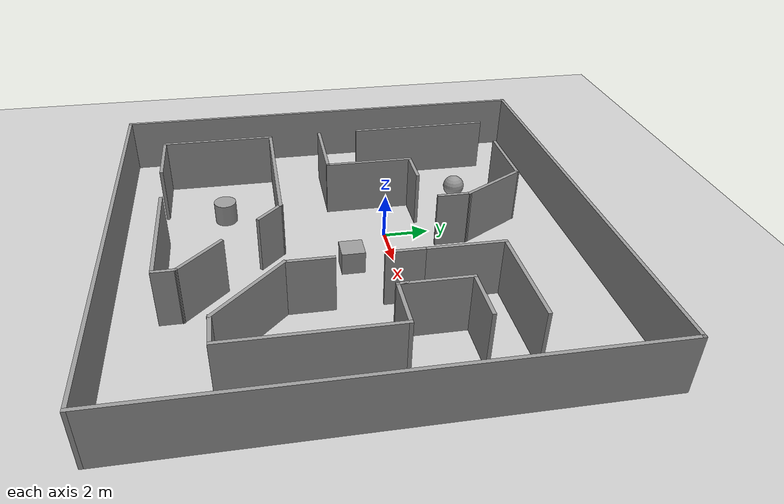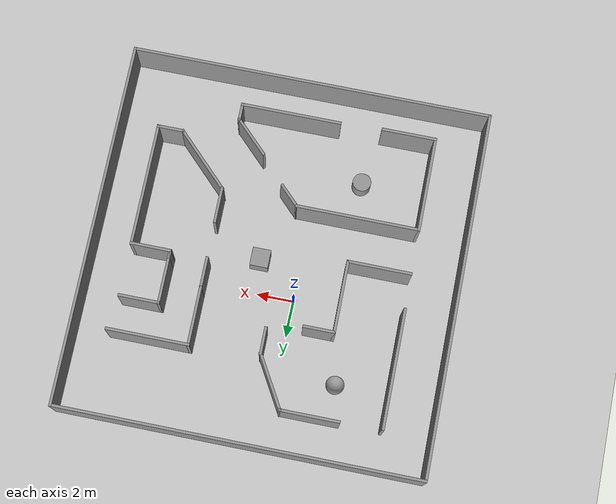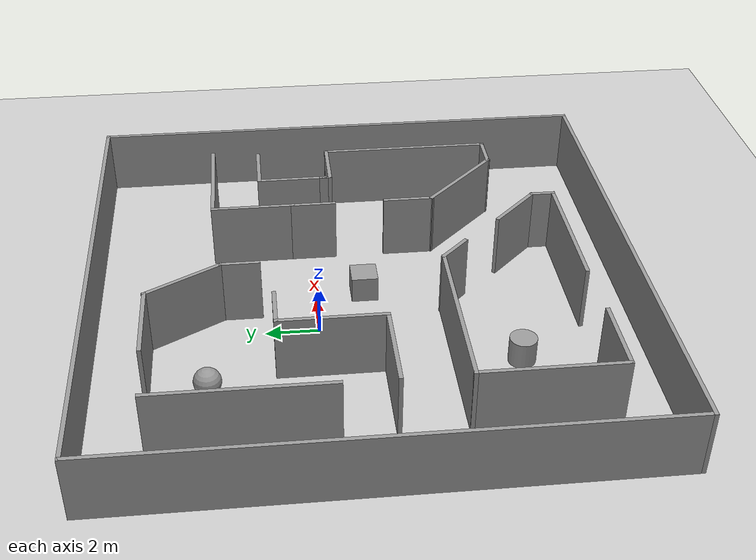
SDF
<sdf version="1.6">
 <world name="default">
  <light name="sun" type="directional">
   <pose>0 0 10 0 -0 0</pose>
   <diffuse>0.8 0.8 0.8 1</diffuse>
   <specular>0.2 0.2 0.2 1</specular>
   <attenuation>
    <range>1000</range>
    <constant>0.9</constant>
    <linear>0.01</linear>
    <quadratic>0.001</quadratic>
   </attenuation>
   <direction>-0.5 0.1 -0.9</direction>
  </light>
  <model name="ground_plane">
   <static>1</static>
   <link name="link">
    <collision name="collision">
     <geometry><plane><normal>0 0 1</normal><size>100 100</size></plane></geometry>
     <surface>
      <contact><collide_bitmask>65535</collide_bitmask></contact>
      <friction><ode><mu>100</mu><mu2>50</mu2></ode></friction>
     </surface>
    </collision>
    <visual name="visual">
     <cast_shadows>0</cast_shadows>
     <geometry><plane><normal>0 0 1</normal><size>100 100</size></plane></geometry>
     <material>
      <script><uri>file://media/materials/scripts/gazebo.material</uri><name>Gazebo/Grey</name></script>
     </material>
    </visual>
   </link>
  </model>
  <gravity>0 0 -9.8</gravity>
  <magnetic_field>6e-06 2.3e-05 -4.2e-05</magnetic_field>
  <atmosphere type="adiabatic"/>
  <physics name="default_physics" default="0" type="ode">
   <max_step_size>0.001</max_step_size>
   <real_time_factor>1</real_time_factor>
   <real_time_update_rate>1000</real_time_update_rate>
  </physics>
  <scene><ambient>0.4 0.4 0.4 1</ambient><background>0.7 0.7 0.7 1</background><shadows>1</shadows></scene>
  <audio><device>default</device></audio>
  <spherical_coordinates>
   <surface_model>EARTH_WGS84</surface_model>
   <latitude_deg>0</latitude_deg>
   <longitude_deg>0</longitude_deg>
   <elevation>0</elevation>
   <heading_deg>0</heading_deg>
  </spherical_coordinates>
  <model name="smaller_floorplan">
   <pose>1.32311 -1.68686 0 0 -0 0</pose>
   <link name="Wall_12">
    <collision name="Wall_12_Collision">
     <geometry><box><size>3.25 0.15 2.5</size></box></geometry>
     <pose>0 0 1.25 0 -0 0</pose>
    </collision>
    <visual name="Wall_12_Visual">
     <pose>0 0 1.25 0 -0 0</pose>
     <geometry><box><size>3.25 0.15 2.5</size></box></geometry>
     <material>
      <script><uri>file://media/materials/scripts/gazebo.material</uri><name>Gazebo/Grey</name></script>
      <ambient>1 1 1 1</ambient>
     </material>
     <meta><layer>0</layer></meta>
    </visual>
    <pose>-3.35944 7.84693 0 0 -0 0</pose>
   </link>
   <link name="Wall_13">
    <collision name="Wall_13_Collision">
     <geometry><box><size>3.25 0.15 2.5</size></box></geometry>
     <pose>0 0 1.25 0 -0 0</pose>
    </collision>
    <visual name="Wall_13_Visual">
     <pose>0 0 1.25 0 -0 0</pose>
     <geometry><box><size>3.25 0.15 2.5</size></box></geometry>
     <material>
      <script><uri>file://media/materials/scripts/gazebo.material</uri><name>Gazebo/Grey</name></script>
      <ambient>1 1 1 1</ambient>
     </material>
     <meta><layer>0</layer></meta>
    </visual>
    <pose>-1.03444 6.50459 0 0 -0 -1.0472</pose>
   </link>
   <link name="Wall_14">
    <collision name="Wall_14_Collision">
     <geometry><box><size>1.5 0.15 2.5</size></box></geometry>
     <pose>0 0 1.25 0 -0 0</pose>
    </collision>
    <visual name="Wall_14_Visual">
     <pose>0 0 1.25 0 -0 0</pose>
     <geometry><box><size>1.5 0.15 2.5</size></box></geometry>
     <material>
      <script><uri>file://media/materials/scripts/gazebo.material</uri><name>Gazebo/Grey</name></script>
      <ambient>1 1 1 1</ambient>
     </material>
     <meta><layer>0</layer></meta>
    </visual>
    <pose>-0.259442 4.48725 0 0 -0 -1.5708</pose>
   </link>
   <link name="Wall_19">
    <collision name="Wall_19_Collision">
     <geometry><box><size>6.5 0.15 2.5</size></box></geometry>
     <pose>0 0 1.25 0 -0 0</pose>
    </collision>
    <visual name="Wall_19_Visual">
     <pose>0 0 1.25 0 -0 0</pose>
     <geometry><box><size>6.5 0.15 2.5</size></box></geometry>
     <material>
      <script><uri>file://media/materials/scripts/gazebo.material</uri><name>Gazebo/Grey</name></script>
      <ambient>1 1 1 1</ambient>
     </material>
     <meta><layer>0</layer></meta>
    </visual>
    <pose>-7.19375 4.57675 0 0 -0 -1.5708</pose>
   </link>
   <link name="Wall_21">
    <collision name="Wall_21_Collision">
     <geometry><box><size>6.75 0.15 2.5</size></box></geometry>
     <pose>0 0 1.25 0 -0 0</pose>
    </collision>
    <visual name="Wall_21_Visual">
     <pose>0 0 1.25 0 -0 0</pose>
     <geometry><box><size>6.75 0.15 2.5</size></box></geometry>
     <material>
      <script><uri>file://media/materials/scripts/gazebo.material</uri><name>Gazebo/Grey</name></script>
      <ambient>1 1 1 1</ambient>
     </material>
     <meta><layer>0</layer></meta>
    </visual>
    <pose>-3.84616 -2.95593 0 0 -0 0</pose>
   </link>
   <link name="Wall_22">
    <collision name="Wall_22_Collision">
     <geometry><box><size>1.5 0.15 2.5</size></box></geometry>
     <pose>0 0 1.25 0 -0 0</pose>
    </collision>
    <visual name="Wall_22_Visual">
     <pose>0 0 1.25 0 -0 0</pose>
     <geometry><box><size>1.5 0.15 2.5</size></box></geometry>
     <material>
      <script><uri>file://media/materials/scripts/gazebo.material</uri><name>Gazebo/Grey</name></script>
      <ambient>1 1 1 1</ambient>
     </material>
     <meta><layer>0</layer></meta>
    </visual>
    <pose>-0.068861 -3.43323 0 0 -0 -0.785398</pose>
   </link>
   <link name="Wall_24">
    <collision name="Wall_24_Collision">
     <geometry><box><size>2.5 0.15 2.5</size></box></geometry>
     <pose>0 0 1.25 0 -0 0</pose>
    </collision>
    <visual name="Wall_24_Visual">
     <pose>0 0 1.25 0 -0 0</pose>
     <geometry><box><size>2.5 0.15 2.5</size></box></geometry>
     <material>
      <script><uri>file://media/materials/scripts/gazebo.material</uri><name>Gazebo/Grey</name></script>
      <ambient>1 1 1 1</ambient>
     </material>
     <meta><layer>0</layer></meta>
    </visual>
    <pose>2.58397 -6.26145 0 0 -0 -0.785398</pose>
   </link>
   <link name="Wall_25">
    <collision name="Wall_25_Collision">
     <geometry><box><size>1 0.15 2.5</size></box></geometry>
     <pose>0 0 1.25 0 -0 0</pose>
    </collision>
    <visual name="Wall_25_Visual">
     <pose>0 0 1.25 0 -0 0</pose>
     <geometry><box><size>1 0.15 2.5</size></box></geometry>
     <material>
      <script><uri>file://media/materials/scripts/gazebo.material</uri><name>Gazebo/Grey</name></script>
      <ambient>1 1 1 1</ambient>
     </material>
     <meta><layer>0</layer></meta>
    </visual>
    <pose>3.41482 -7.5173 0 0 -0 -1.5708</pose>
   </link>
   <link name="Wall_26">
    <collision name="Wall_26_Collision">
     <geometry><box><size>5.5 0.15 2.5</size></box></geometry>
     <pose>0 0 1.25 0 -0 0</pose>
    </collision>
    <visual name="Wall_26_Visual">
     <pose>0 0 1.25 0 -0 0</pose>
     <geometry><box><size>5.5 0.15 2.5</size></box></geometry>
     <material>
      <script><uri>file://media/materials/scripts/gazebo.material</uri><name>Gazebo/Grey</name></script>
      <ambient>1 1 1 1</ambient>
     </material>
     <meta><layer>0</layer></meta>
    </visual>
    <pose>0.739818 -7.9423 0 0 -0 3.14159</pose>
   </link>
   <link name="Wall_3">
    <collision name="Wall_3_Collision">
     <geometry><box><size>20 0.15 2.5</size></box></geometry>
     <pose>0 0 1.25 0 -0 0</pose>
    </collision>
    <visual name="Wall_3_Visual">
     <pose>0 0 1.25 0 -0 0</pose>
     <geometry><box><size>20 0.15 2.5</size></box></geometry>
     <material>
      <script><uri>file://media/materials/scripts/gazebo.material</uri><name>Gazebo/Grey</name></script>
      <ambient>1 1 1 1</ambient>
     </material>
     <meta><layer>0</layer></meta>
    </visual>
    <pose>-9.8 0 0 0 -0 1.5708</pose>
   </link>
   <link name="Wall_30">
    <collision name="Wall_30_Collision">
     <geometry><box><size>5.25 0.15 2.5</size></box></geometry>
     <pose>0 0 1.25 0 -0 0</pose>
    </collision>
    <visual name="Wall_30_Visual">
     <pose>0 0 1.25 0 -0 0</pose>
     <geometry><box><size>5.25 0.15 2.5</size></box></geometry>
     <material>
      <script><uri>file://media/materials/scripts/gazebo.material</uri><name>Gazebo/Grey</name></script>
      <ambient>1 1 1 1</ambient>
     </material>
     <meta><layer>0</layer></meta>
    </visual>
    <pose>-7.14616 -5.50593 0 0 -0 -1.5708</pose>
   </link>
   <link name="Wall_31">
    <collision name="Wall_31_Collision">
     <geometry><box><size>3 0.15 2.5</size></box></geometry>
     <pose>0 0 1.25 0 -0 0</pose>
    </collision>
    <visual name="Wall_31_Visual">
     <pose>0 0 1.25 0 -0 0</pose>
     <geometry><box><size>3 0.15 2.5</size></box></geometry>
     <material>
      <script><uri>file://media/materials/scripts/gazebo.material</uri><name>Gazebo/Grey</name></script>
      <ambient>1 1 1 1</ambient>
     </material>
     <meta><layer>0</layer></meta>
    </visual>
    <pose>-5.72116 -8.05593 0 0 -0 0</pose>
   </link>
   <link name="Wall_33">
    <collision name="Wall_33_Collision">
     <geometry><box><size>3.5 0.15 2.5</size></box></geometry>
     <pose>0 0 1.25 0 -0 0</pose>
    </collision>
    <visual name="Wall_33_Visual">
     <pose>0 0 1.25 0 -0 0</pose>
     <geometry><box><size>3.5 0.15 2.5</size></box></geometry>
     <material>
      <script><uri>file://media/materials/scripts/gazebo.material</uri><name>Gazebo/Grey</name></script>
      <ambient>1 1 1 1</ambient>
     </material>
     <meta><layer>0</layer></meta>
    </visual>
    <pose>-5.47116 -0.528858 0 0 -0 0</pose>
   </link>
   <link name="Wall_34">
    <collision name="Wall_34_Collision">
     <geometry><box><size>4 0.15 2.5</size></box></geometry>
     <pose>0 0 1.25 0 -0 0</pose>
    </collision>
    <visual name="Wall_34_Visual">
     <pose>0 0 1.25 0 -0 0</pose>
     <geometry><box><size>4 0.15 2.5</size></box></geometry>
     <material>
      <script><uri>file://media/materials/scripts/gazebo.material</uri><name>Gazebo/Grey</name></script>
      <ambient>1 1 1 1</ambient>
     </material>
     <meta><layer>0</layer></meta>
    </visual>
    <pose>-3.79616 1.39614 0 0 -0 1.5708</pose>
   </link>
   <link name="Wall_35">
    <collision name="Wall_35_Collision">
     <geometry><box><size>1.75 0.15 2.5</size></box></geometry>
     <pose>0 0 1.25 0 -0 0</pose>
    </collision>
    <visual name="Wall_35_Visual">
     <pose>0 0 1.25 0 -0 0</pose>
     <geometry><box><size>1.75 0.15 2.5</size></box></geometry>
     <material>
      <script><uri>file://media/materials/scripts/gazebo.material</uri><name>Gazebo/Grey</name></script>
      <ambient>1 1 1 1</ambient>
     </material>
     <meta><layer>0</layer></meta>
    </visual>
    <pose>-2.99616 3.32114 0 0 -0 0</pose>
   </link>
   <link name="Wall_39">
    <collision name="Wall_39_Collision">
     <geometry><box><size>1.75 0.15 2.5</size></box></geometry>
     <pose>0 0 1.25 0 -0 0</pose>
    </collision>
    <visual name="Wall_39_Visual">
     <pose>0 0 1.25 0 -0 0</pose>
     <geometry><box><size>1.75 0.15 2.5</size></box></geometry>
     <material>
      <script><uri>file://media/materials/scripts/gazebo.material</uri><name>Gazebo/Grey</name></script>
      <ambient>1 1 1 1</ambient>
     </material>
     <meta><layer>0</layer></meta>
    </visual>
    <pose>3.51572 1.56475 0 0 -0 -1.5708</pose>
   </link>
   <link name="Wall_41">
    <collision name="Wall_41_Collision">
     <geometry><box><size>2 0.15 2.5</size></box></geometry>
     <pose>0 0 1.25 0 -0 0</pose>
    </collision>
    <visual name="Wall_41_Visual">
     <pose>0 0 1.25 0 -0 0</pose>
     <geometry><box><size>2 0.15 2.5</size></box></geometry>
     <material>
      <script><uri>file://media/materials/scripts/gazebo.material</uri><name>Gazebo/Grey</name></script>
      <ambient>1 1 1 1</ambient>
     </material>
     <meta><layer>0</layer></meta>
    </visual>
    <pose>3.52997 -2.19847 0 0 -0 -1.5708</pose>
   </link>
   <link name="Wall_42">
    <collision name="Wall_42_Collision">
     <geometry><box><size>4 0.15 2.5</size></box></geometry>
     <pose>0 0 1.25 0 -0 0</pose>
    </collision>
    <visual name="Wall_42_Visual">
     <pose>0 0 1.25 0 -0 0</pose>
     <geometry><box><size>4 0.15 2.5</size></box></geometry>
     <material>
      <script><uri>file://media/materials/scripts/gazebo.material</uri><name>Gazebo/Grey</name></script>
      <ambient>1 1 1 1</ambient>
     </material>
     <meta><layer>0</layer></meta>
    </visual>
    <pose>4.89116 -4.48465 0 0 -0 -0.785398</pose>
   </link>
   <link name="Wall_43">
    <collision name="Wall_43_Collision">
     <geometry><box><size>1.5 0.15 2.5</size></box></geometry>
     <pose>0 0 1.25 0 -0 0</pose>
    </collision>
    <visual name="Wall_43_Visual">
     <pose>0 0 1.25 0 -0 0</pose>
     <geometry><box><size>1.5 0.15 2.5</size></box></geometry>
     <material>
      <script><uri>file://media/materials/scripts/gazebo.material</uri><name>Gazebo/Grey</name></script>
      <ambient>1 1 1 1</ambient>
     </material>
     <meta><layer>0</layer></meta>
    </visual>
    <pose>6.92734 -5.84583 0 0 -0 0</pose>
   </link>
   <link name="Wall_44">
    <collision name="Wall_44_Collision">
     <geometry><box><size>6.75 0.15 2.5</size></box></geometry>
     <pose>0 0 1.25 0 -0 0</pose>
    </collision>
    <visual name="Wall_44_Visual">
     <pose>0 0 1.25 0 -0 0</pose>
     <geometry><box><size>6.75 0.15 2.5</size></box></geometry>
     <material>
      <script><uri>file://media/materials/scripts/gazebo.material</uri><name>Gazebo/Grey</name></script>
      <ambient>1 1 1 1</ambient>
     </material>
     <meta><layer>0</layer></meta>
    </visual>
    <pose>7.60234 -2.54583 0 0 -0 1.5708</pose>
   </link>
   <link name="Wall_45">
    <collision name="Wall_45_Collision">
     <geometry><box><size>2.25 0.15 2.5</size></box></geometry>
     <pose>0 0 1.25 0 -0 0</pose>
    </collision>
    <visual name="Wall_45_Visual">
     <pose>0 0 1.25 0 -0 0</pose>
     <geometry><box><size>2.25 0.15 2.5</size></box></geometry>
     <material>
      <script><uri>file://media/materials/scripts/gazebo.material</uri><name>Gazebo/Grey</name></script>
      <ambient>1 1 1 1</ambient>
     </material>
     <meta><layer>0</layer></meta>
    </visual>
    <pose>6.55234 0.754168 0 0 -0 3.14159</pose>
   </link>
   <link name="Wall_46">
    <collision name="Wall_46_Collision">
     <geometry><box><size>0.5 0.15 2.5</size></box></geometry>
     <pose>0 0 1.25 0 -0 0</pose>
    </collision>
    <visual name="Wall_46_Visual">
     <pose>0 0 1.25 0 -0 0</pose>
     <geometry><box><size>0.5 0.15 2.5</size></box></geometry>
     <material>
      <script><uri>file://media/materials/scripts/gazebo.material</uri><name>Gazebo/Grey</name></script>
      <ambient>1 1 1 1</ambient>
     </material>
     <meta><layer>0</layer></meta>
    </visual>
    <pose>5.50234 0.929168 0 0 -0 1.5708</pose>
   </link>
   <link name="Wall_48">
    <collision name="Wall_48_Collision">
     <geometry><box><size>3.25 0.15 2.5</size></box></geometry>
     <pose>0 0 1.25 0 -0 0</pose>
    </collision>
    <visual name="Wall_48_Visual">
     <pose>0 0 1.25 0 -0 0</pose>
     <geometry><box><size>3.25 0.15 2.5</size></box></geometry>
     <material>
      <script><uri>file://media/materials/scripts/gazebo.material</uri><name>Gazebo/Grey</name></script>
      <ambient>1 1 1 1</ambient>
     </material>
     <meta><layer>0</layer></meta>
    </visual>
    <pose>3.51572 3.91475 0 0 -0 1.5708</pose>
   </link>
   <link name="Wall_49">
    <collision name="Wall_49_Collision">
     <geometry><box><size>4.5 0.15 2.5</size></box></geometry>
     <pose>0 0 1.25 0 -0 0</pose>
    </collision>
    <visual name="Wall_49_Visual">
     <pose>0 0 1.25 0 -0 0</pose>
     <geometry><box><size>4.5 0.15 2.5</size></box></geometry>
     <material>
      <script><uri>file://media/materials/scripts/gazebo.material</uri><name>Gazebo/Grey</name></script>
      <ambient>1 1 1 1</ambient>
     </material>
     <meta><layer>0</layer></meta>
    </visual>
    <pose>5.69072 5.46475 0 0 -0 0</pose>
   </link>
   <link name="Wall_5">
    <collision name="Wall_5_Collision">
     <geometry><box><size>19.75 0.15 2.5</size></box></geometry>
     <pose>0 0 1.25 0 -0 0</pose>
    </collision>
    <visual name="Wall_5_Visual">
     <pose>0 0 1.25 0 -0 0</pose>
     <geometry><box><size>19.75 0.15 2.5</size></box></geometry>
     <material>
      <script><uri>file://media/materials/scripts/gazebo.material</uri><name>Gazebo/Grey</name></script>
      <ambient>1 1 1 1</ambient>
     </material>
     <meta><layer>0</layer></meta>
    </visual>
    <pose>0 9.925 0 0 -0 0</pose>
   </link>
   <link name="Wall_51">
    <collision name="Wall_51_Collision">
     <geometry><box><size>3 0.15 2.5</size></box></geometry>
     <pose>0 0 1.25 0 -0 0</pose>
    </collision>
    <visual name="Wall_51_Visual">
     <pose>0 0 1.25 0 -0 0</pose>
     <geometry><box><size>3 0.15 2.5</size></box></geometry>
     <material>
      <script><uri>file://media/materials/scripts/gazebo.material</uri><name>Gazebo/Grey</name></script>
      <ambient>1 1 1 1</ambient>
     </material>
     <meta><layer>0</layer></meta>
    </visual>
    <pose>5.50234 2.17917 0 0 -0 1.5708</pose>
   </link>
   <link name="Wall_52">
    <collision name="Wall_52_Collision">
     <geometry><box><size>2.25 0.15 2.5</size></box></geometry>
     <pose>0 0 1.25 0 -0 0</pose>
    </collision>
    <visual name="Wall_52_Visual">
     <pose>0 0 1.25 0 -0 0</pose>
     <geometry><box><size>2.25 0.15 2.5</size></box></geometry>
     <material>
      <script><uri>file://media/materials/scripts/gazebo.material</uri><name>Gazebo/Grey</name></script>
      <ambient>1 1 1 1</ambient>
     </material>
     <meta><layer>0</layer></meta>
    </visual>
    <pose>6.55234 3.60417 0 0 -0 0</pose>
   </link>
   <link name="Wall_6">
    <collision name="Wall_6_Collision">
     <geometry><box><size>20 0.15 2.5</size></box></geometry>
     <pose>0 0 1.25 0 -0 0</pose>
    </collision>
    <visual name="Wall_6_Visual">
     <pose>0 0 1.25 0 -0 0</pose>
     <geometry><box><size>20 0.15 2.5</size></box></geometry>
     <material>
      <script><uri>file://media/materials/scripts/gazebo.material</uri><name>Gazebo/Grey</name></script>
      <ambient>1 1 1 1</ambient>
     </material>
     <meta><layer>0</layer></meta>
    </visual>
    <pose>9.8 0 0 0 -0 -1.5708</pose>
   </link>
   <link name="Wall_7">
    <collision name="Wall_7_Collision">
     <geometry><box><size>19.75 0.15 2.5</size></box></geometry>
     <pose>0 0 1.25 0 -0 0</pose>
    </collision>
    <visual name="Wall_7_Visual">
     <pose>0 0 1.25 0 -0 0</pose>
     <geometry><box><size>19.75 0.15 2.5</size></box></geometry>
     <material>
      <script><uri>file://media/materials/scripts/gazebo.material</uri><name>Gazebo/Grey</name></script>
      <ambient>1 1 1 1</ambient>
     </material>
     <meta><layer>0</layer></meta>
    </visual>
    <pose>0 -9.925 0 0 -0 3.14159</pose>
   </link>
   <static>1</static>
  </model>
  <model name="smaller_updated">
   <link name="link_1">
    <inertial>
     <mass>1</mass>
     <inertia><ixx>0.145833</ixx><ixy>0</ixy><ixz>0</ixz><iyy>0.145833</iyy><iyz>0</iyz><izz>0.125</izz></inertia>
    </inertial>
    <pose>-1.30334 -5.4435 0 0 -0 0</pose>
    <visual name="visual">
     <geometry><cylinder><radius>0.5</radius><length>1</length></cylinder></geometry>
     <material>
      <lighting>1</lighting>
      <script><uri>file://media/materials/scripts/gazebo.material</uri><name>Gazebo/Grey</name></script>
     </material>
    </visual>
    <collision name="collision">
     <geometry><cylinder><radius>0.5</radius><length>1</length></cylinder></geometry>
     <surface>
      <friction>
       <ode><mu>1</mu><mu2>1</mu2><fdir1>0 0 0</fdir1><slip1>0</slip1><slip2>0</slip2></ode>
       <torsional>
        <coefficient>1</coefficient>
        <patch_radius>0</patch_radius>
        <surface_radius>0</surface_radius>
        <use_patch_radius>1</use_patch_radius>
        <ode><slip>0</slip></ode>
       </torsional>
      </friction>
      <bounce><restitution_coefficient>0</restitution_coefficient><threshold>1e+06</threshold></bounce>
      <contact>
       <collide_without_contact>0</collide_without_contact>
       <collide_without_contact_bitmask>1</collide_without_contact_bitmask>
       <collide_bitmask>1</collide_bitmask>
       <ode>
        <soft_cfm>0</soft_cfm>
        <soft_erp>0.2</soft_erp>
        <kp>1e+13</kp>
        <kd>1</kd>
        <max_vel>0.01</max_vel>
        <min_depth>0</min_depth>
       </ode>
       <bullet>
        <split_impulse>1</split_impulse>
        <split_impulse_penetration_threshold>-0.01</split_impulse_penetration_threshold>
        <soft_cfm>0</soft_cfm>
        <soft_erp>0.2</soft_erp>
        <kp>1e+13</kp>
        <kd>1</kd>
       </bullet>
      </contact>
     </surface>
    </collision>
   </link>
   <link name="link_3">
    <inertial>
     <mass>1</mass>
     <inertia>
      <ixx>0.166667</ixx>
      <ixy>0</ixy>
      <ixz>0</ixz>
      <iyy>0.166667</iyy>
      <iyz>0</iyz>
      <izz>0.166667</izz>
     </inertia>
    </inertial>
    <pose>3.26987 -0.235564 0 0 -0 0</pose>
    <visual name="visual">
     <geometry><box><size>1 1 1</size></box></geometry>
     <material>
      <lighting>1</lighting>
      <script><uri>file://media/materials/scripts/gazebo.material</uri><name>Gazebo/Grey</name></script>
     </material>
    </visual>
    <collision name="collision">
     <geometry><box><size>1 1 1</size></box></geometry>
     <surface>
      <friction>
       <ode><mu>1</mu><mu2>1</mu2><fdir1>0 0 0</fdir1><slip1>0</slip1><slip2>0</slip2></ode>
       <torsional>
        <coefficient>1</coefficient>
        <patch_radius>0</patch_radius>
        <surface_radius>0</surface_radius>
        <use_patch_radius>1</use_patch_radius>
        <ode><slip>0</slip></ode>
       </torsional>
      </friction>
      <bounce><restitution_coefficient>0</restitution_coefficient><threshold>1e+06</threshold></bounce>
      <contact>
       <collide_without_contact>0</collide_without_contact>
       <collide_without_contact_bitmask>1</collide_without_contact_bitmask>
       <collide_bitmask>1</collide_bitmask>
       <ode>
        <soft_cfm>0</soft_cfm>
        <soft_erp>0.2</soft_erp>
        <kp>1e+13</kp>
        <kd>1</kd>
        <max_vel>0.01</max_vel>
        <min_depth>0</min_depth>
       </ode>
       <bullet>
        <split_impulse>1</split_impulse>
        <split_impulse_penetration_threshold>-0.01</split_impulse_penetration_threshold>
        <soft_cfm>0</soft_cfm>
        <soft_erp>0.2</soft_erp>
        <kp>1e+13</kp>
        <kd>1</kd>
       </bullet>
      </contact>
     </surface>
    </collision>
   </link>
   <link name="link_4">
    <inertial>
     <mass>1</mass>
     <inertia><ixx>0.1</ixx><ixy>0</ixy><ixz>0</ixz><iyy>0.1</iyy><iyz>0</iyz><izz>0.1</izz></inertia>
    </inertial>
    <pose>-1.96654 5.67906 0 0 -0 0</pose>
    <visual name="visual">
     <geometry><sphere><radius>0.5</radius></sphere></geometry>
     <material>
      <lighting>1</lighting>
      <script><uri>file://media/materials/scripts/gazebo.material</uri><name>Gazebo/Grey</name></script>
     </material>
    </visual>
    <collision name="collision">
     <geometry><sphere><radius>0.5</radius></sphere></geometry>
     <surface>
      <friction>
       <ode><mu>1</mu><mu2>1</mu2><fdir1>0 0 0</fdir1><slip1>0</slip1><slip2>0</slip2></ode>
       <torsional>
        <coefficient>1</coefficient>
        <patch_radius>0</patch_radius>
        <surface_radius>0</surface_radius>
        <use_patch_radius>1</use_patch_radius>
        <ode><slip>0</slip></ode>
       </torsional>
      </friction>
      <bounce><restitution_coefficient>0</restitution_coefficient><threshold>1e+06</threshold></bounce>
      <contact>
       <collide_without_contact>0</collide_without_contact>
       <collide_without_contact_bitmask>1</collide_without_contact_bitmask>
       <collide_bitmask>1</collide_bitmask>
       <ode>
        <soft_cfm>0</soft_cfm>
        <soft_erp>0.2</soft_erp>
        <kp>1e+13</kp>
        <kd>1</kd>
        <max_vel>0.01</max_vel>
        <min_depth>0</min_depth>
       </ode>
       <bullet>
        <split_impulse>1</split_impulse>
        <split_impulse_penetration_threshold>-0.01</split_impulse_penetration_threshold>
        <soft_cfm>0</soft_cfm>
        <soft_erp>0.2</soft_erp>
        <kp>1e+13</kp>
        <kd>1</kd>
       </bullet>
      </contact>
     </surface>
    </collision>
   </link>
   <static>0</static>
   <pose>-1.09379 -1.60289 0.5 0 -0 0</pose>
  </model>
 </world>
</sdf>
